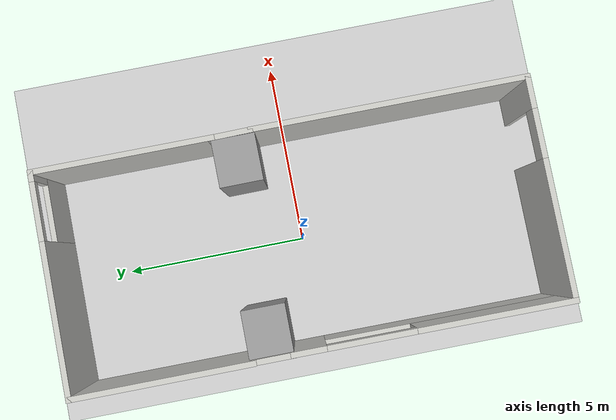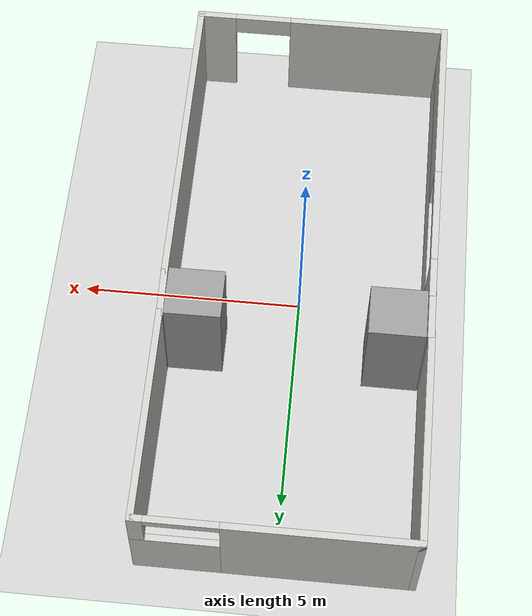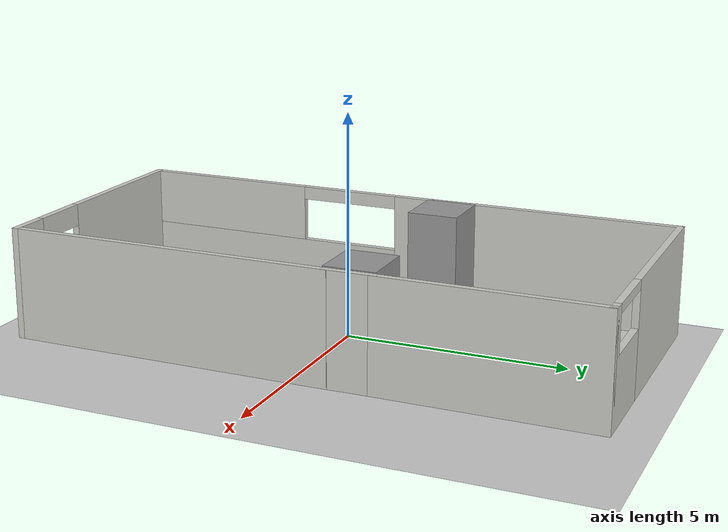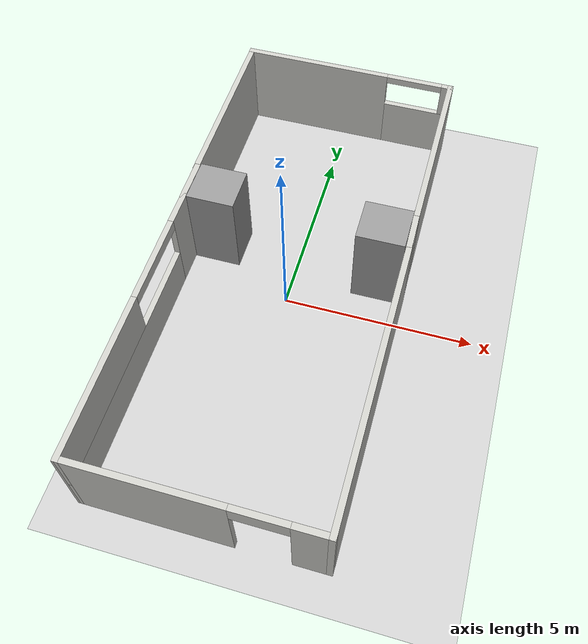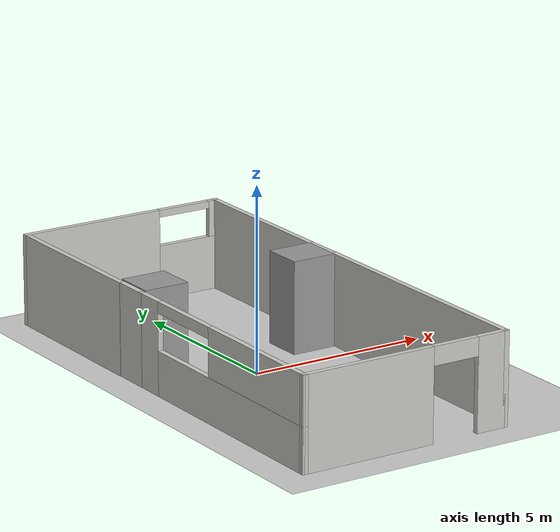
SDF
<sdf version="1.7">
 <world name="default">
  <model name="ground_plane">
   <static>1</static>
   <link name="link">
    <collision name="collision">
     <geometry><plane><normal>0 0 1</normal><size>100 100</size></plane></geometry>
     <surface>
      <contact><collide_bitmask>65535</collide_bitmask></contact>
      <friction><ode><mu>100</mu><mu2>50</mu2></ode></friction>
     </surface>
    </collision>
    <visual name="visual">
     <cast_shadows>0</cast_shadows>
     <geometry><plane><normal>0 0 1</normal><size>100 100</size></plane></geometry>
     <material>
      <script><uri>file://media/materials/scripts/gazebo.material</uri><name>Gazebo/Grey</name></script>
     </material>
    </visual>
   </link>
  </model>
  <model name="labview1">
   <link name="Wall_0">
    <pose>-0.008541 6.52312 0 0 -0 0</pose>
    <visual name="Wall_0_Visual_0">
     <pose>-0.939832 0 1.25 0 -0 0</pose>
     <geometry><box><size>4.12034 0.15 2.5</size></box></geometry>
     <material>
      <script><uri>file://media/materials/scripts/gazebo.material</uri><name>Gazebo/CeilingTiled</name></script>
      <ambient>1 1 1 1</ambient>
      <shader type="pixel"/>
     </material>
     <meta><layer>0</layer></meta>
    </visual>
    <visual name="Wall_0_Visual_1">
     <pose>2.06017 0 0.75 0 -0 0</pose>
     <geometry><box><size>1.87966 0.15 1.5</size></box></geometry>
     <material>
      <script><uri>file://media/materials/scripts/gazebo.material</uri><name>Gazebo/CeilingTiled</name></script>
      <ambient>1 1 1 1</ambient>
      <shader type="pixel"/>
     </material>
     <meta><layer>0</layer></meta>
    </visual>
    <visual name="Wall_0_Visual_3">
     <pose>1.89841 0 2.4 0 -0 0</pose>
     <geometry><box><size>1.55614 0.15 0.2</size></box></geometry>
     <material>
      <script><uri>file://media/materials/scripts/gazebo.material</uri><name>Gazebo/CeilingTiled</name></script>
      <ambient>1 1 1 1</ambient>
      <shader type="pixel"/>
     </material>
     <meta><layer>0</layer></meta>
    </visual>
    <visual name="Wall_0_Visual_2">
     <pose>2.83824 0 2 0 -0 0</pose>
     <geometry><box><size>0.32352 0.15 1</size></box></geometry>
     <material>
      <script><uri>file://media/materials/scripts/gazebo.material</uri><name>Gazebo/CeilingTiled</name></script>
      <ambient>1 1 1 1</ambient>
      <shader type="pixel"/>
     </material>
     <meta><layer>0</layer></meta>
    </visual>
    <collision name="Wall_0_Collision_0">
     <pose>-0.939832 0 1.25 0 -0 0</pose>
     <geometry><box><size>4.12034 0.15 2.5</size></box></geometry>
     <surface>
      <friction>
       <ode><mu>1</mu><mu2>1</mu2><fdir1>0 0 0</fdir1><slip1>0</slip1><slip2>0</slip2></ode>
       <torsional>
        <coefficient>1</coefficient>
        <patch_radius>0</patch_radius>
        <surface_radius>0</surface_radius>
        <use_patch_radius>1</use_patch_radius>
        <ode><slip>0</slip></ode>
       </torsional>
      </friction>
      <bounce><restitution_coefficient>0</restitution_coefficient><threshold>1e+06</threshold></bounce>
      <contact>
       <collide_without_contact>0</collide_without_contact>
       <collide_without_contact_bitmask>1</collide_without_contact_bitmask>
       <collide_bitmask>1</collide_bitmask>
       <ode>
        <soft_cfm>0</soft_cfm>
        <soft_erp>0.2</soft_erp>
        <kp>1e+13</kp>
        <kd>1</kd>
        <max_vel>0.01</max_vel>
        <min_depth>0</min_depth>
       </ode>
       <bullet>
        <split_impulse>1</split_impulse>
        <split_impulse_penetration_threshold>-0.01</split_impulse_penetration_threshold>
        <soft_cfm>0</soft_cfm>
        <soft_erp>0.2</soft_erp>
        <kp>1e+13</kp>
        <kd>1</kd>
       </bullet>
      </contact>
     </surface>
    </collision>
    <collision name="Wall_0_Collision_1">
     <pose>2.06017 0 0.75 0 -0 0</pose>
     <geometry><box><size>1.87966 0.15 1.5</size></box></geometry>
     <surface>
      <friction>
       <ode><mu>1</mu><mu2>1</mu2><fdir1>0 0 0</fdir1><slip1>0</slip1><slip2>0</slip2></ode>
       <torsional>
        <coefficient>1</coefficient>
        <patch_radius>0</patch_radius>
        <surface_radius>0</surface_radius>
        <use_patch_radius>1</use_patch_radius>
        <ode><slip>0</slip></ode>
       </torsional>
      </friction>
      <bounce><restitution_coefficient>0</restitution_coefficient><threshold>1e+06</threshold></bounce>
      <contact>
       <collide_without_contact>0</collide_without_contact>
       <collide_without_contact_bitmask>1</collide_without_contact_bitmask>
       <collide_bitmask>1</collide_bitmask>
       <ode>
        <soft_cfm>0</soft_cfm>
        <soft_erp>0.2</soft_erp>
        <kp>1e+13</kp>
        <kd>1</kd>
        <max_vel>0.01</max_vel>
        <min_depth>0</min_depth>
       </ode>
       <bullet>
        <split_impulse>1</split_impulse>
        <split_impulse_penetration_threshold>-0.01</split_impulse_penetration_threshold>
        <soft_cfm>0</soft_cfm>
        <soft_erp>0.2</soft_erp>
        <kp>1e+13</kp>
        <kd>1</kd>
       </bullet>
      </contact>
     </surface>
    </collision>
    <collision name="Wall_0_Collision_2">
     <pose>2.83824 0 2 0 -0 0</pose>
     <geometry><box><size>0.32352 0.15 1</size></box></geometry>
     <surface>
      <friction>
       <ode><mu>1</mu><mu2>1</mu2><fdir1>0 0 0</fdir1><slip1>0</slip1><slip2>0</slip2></ode>
       <torsional>
        <coefficient>1</coefficient>
        <patch_radius>0</patch_radius>
        <surface_radius>0</surface_radius>
        <use_patch_radius>1</use_patch_radius>
        <ode><slip>0</slip></ode>
       </torsional>
      </friction>
      <bounce><restitution_coefficient>0</restitution_coefficient><threshold>1e+06</threshold></bounce>
      <contact>
       <collide_without_contact>0</collide_without_contact>
       <collide_without_contact_bitmask>1</collide_without_contact_bitmask>
       <collide_bitmask>1</collide_bitmask>
       <ode>
        <soft_cfm>0</soft_cfm>
        <soft_erp>0.2</soft_erp>
        <kp>1e+13</kp>
        <kd>1</kd>
        <max_vel>0.01</max_vel>
        <min_depth>0</min_depth>
       </ode>
       <bullet>
        <split_impulse>1</split_impulse>
        <split_impulse_penetration_threshold>-0.01</split_impulse_penetration_threshold>
        <soft_cfm>0</soft_cfm>
        <soft_erp>0.2</soft_erp>
        <kp>1e+13</kp>
        <kd>1</kd>
       </bullet>
      </contact>
     </surface>
    </collision>
    <collision name="Wall_0_Collision_3">
     <pose>1.89841 0 2.4 0 -0 0</pose>
     <geometry><box><size>1.55614 0.15 0.2</size></box></geometry>
     <surface>
      <friction>
       <ode><mu>1</mu><mu2>1</mu2><fdir1>0 0 0</fdir1><slip1>0</slip1><slip2>0</slip2></ode>
       <torsional>
        <coefficient>1</coefficient>
        <patch_radius>0</patch_radius>
        <surface_radius>0</surface_radius>
        <use_patch_radius>1</use_patch_radius>
        <ode><slip>0</slip></ode>
       </torsional>
      </friction>
      <bounce><restitution_coefficient>0</restitution_coefficient><threshold>1e+06</threshold></bounce>
      <contact>
       <collide_without_contact>0</collide_without_contact>
       <collide_without_contact_bitmask>1</collide_without_contact_bitmask>
       <collide_bitmask>1</collide_bitmask>
       <ode>
        <soft_cfm>0</soft_cfm>
        <soft_erp>0.2</soft_erp>
        <kp>1e+13</kp>
        <kd>1</kd>
        <max_vel>0.01</max_vel>
        <min_depth>0</min_depth>
       </ode>
       <bullet>
        <split_impulse>1</split_impulse>
        <split_impulse_penetration_threshold>-0.01</split_impulse_penetration_threshold>
        <soft_cfm>0</soft_cfm>
        <soft_erp>0.2</soft_erp>
        <kp>1e+13</kp>
        <kd>1</kd>
       </bullet>
      </contact>
     </surface>
    </collision>
   </link>
   <link name="Wall_11">
    <pose>2.91646 4.16012 0 0 0 -1.5708</pose>
    <visual name="Wall_11_Visual">
     <pose>0 0 1.25 0 -0 0</pose>
     <geometry><box><size>4.876 0.15 2.5</size></box></geometry>
     <material>
      <script><uri>file://media/materials/scripts/gazebo.material</uri><name>Gazebo/CeilingTiled</name></script>
      <ambient>1 1 1 1</ambient>
      <shader type="pixel"/>
     </material>
     <meta><layer>0</layer></meta>
    </visual>
    <collision name="Wall_11_Collision">
     <pose>0 0 1.25 0 -0 0</pose>
     <geometry><box><size>4.876 0.15 2.5</size></box></geometry>
     <surface>
      <friction>
       <ode><mu>1</mu><mu2>1</mu2><fdir1>0 0 0</fdir1><slip1>0</slip1><slip2>0</slip2></ode>
       <torsional>
        <coefficient>1</coefficient>
        <patch_radius>0</patch_radius>
        <surface_radius>0</surface_radius>
        <use_patch_radius>1</use_patch_radius>
        <ode><slip>0</slip></ode>
       </torsional>
      </friction>
      <bounce><restitution_coefficient>0</restitution_coefficient><threshold>1e+06</threshold></bounce>
      <contact>
       <collide_without_contact>0</collide_without_contact>
       <collide_without_contact_bitmask>1</collide_without_contact_bitmask>
       <collide_bitmask>1</collide_bitmask>
       <ode>
        <soft_cfm>0</soft_cfm>
        <soft_erp>0.2</soft_erp>
        <kp>1e+13</kp>
        <kd>1</kd>
        <max_vel>0.01</max_vel>
        <min_depth>0</min_depth>
       </ode>
       <bullet>
        <split_impulse>1</split_impulse>
        <split_impulse_penetration_threshold>-0.01</split_impulse_penetration_threshold>
        <soft_cfm>0</soft_cfm>
        <soft_erp>0.2</soft_erp>
        <kp>1e+13</kp>
        <kd>1</kd>
       </bullet>
      </contact>
     </surface>
    </collision>
   </link>
   <link name="Wall_15">
    <pose>2.92039 1.30529 0 0 0 -1.554</pose>
    <visual name="Wall_15_Visual">
     <pose>0 0 1.25 0 -0 0</pose>
     <geometry><box><size>1.179 0.15 2.5</size></box></geometry>
     <material>
      <script><uri>file://media/materials/scripts/gazebo.material</uri><name>Gazebo/CeilingTiled</name></script>
      <ambient>1 1 1 1</ambient>
      <shader type="pixel"/>
     </material>
     <meta><layer>0</layer></meta>
    </visual>
    <collision name="Wall_15_Collision">
     <pose>0 0 1.25 0 -0 0</pose>
     <geometry><box><size>1.179 0.15 2.5</size></box></geometry>
     <surface>
      <friction>
       <ode><mu>1</mu><mu2>1</mu2><fdir1>0 0 0</fdir1><slip1>0</slip1><slip2>0</slip2></ode>
       <torsional>
        <coefficient>1</coefficient>
        <patch_radius>0</patch_radius>
        <surface_radius>0</surface_radius>
        <use_patch_radius>1</use_patch_radius>
        <ode><slip>0</slip></ode>
       </torsional>
      </friction>
      <bounce><restitution_coefficient>0</restitution_coefficient><threshold>1e+06</threshold></bounce>
      <contact>
       <collide_without_contact>0</collide_without_contact>
       <collide_without_contact_bitmask>1</collide_without_contact_bitmask>
       <collide_bitmask>1</collide_bitmask>
       <ode>
        <soft_cfm>0</soft_cfm>
        <soft_erp>0.2</soft_erp>
        <kp>1e+13</kp>
        <kd>1</kd>
        <max_vel>0.01</max_vel>
        <min_depth>0</min_depth>
       </ode>
       <bullet>
        <split_impulse>1</split_impulse>
        <split_impulse_penetration_threshold>-0.01</split_impulse_penetration_threshold>
        <soft_cfm>0</soft_cfm>
        <soft_erp>0.2</soft_erp>
        <kp>1e+13</kp>
        <kd>1</kd>
       </bullet>
      </contact>
     </surface>
    </collision>
   </link>
   <link name="Wall_17">
    <pose>2.93374 -2.87723 0 0 0 -1.5708</pose>
    <visual name="Wall_17_Visual">
     <pose>0 0 1.25 0 -0 0</pose>
     <geometry><box><size>7.441 0.15 2.5</size></box></geometry>
     <material>
      <script><uri>file://media/materials/scripts/gazebo.material</uri><name>Gazebo/CeilingTiled</name></script>
      <ambient>1 1 1 1</ambient>
      <shader type="pixel"/>
     </material>
     <meta><layer>0</layer></meta>
    </visual>
    <collision name="Wall_17_Collision">
     <pose>0 0 1.25 0 -0 0</pose>
     <geometry><box><size>7.441 0.15 2.5</size></box></geometry>
     <surface>
      <friction>
       <ode><mu>1</mu><mu2>1</mu2><fdir1>0 0 0</fdir1><slip1>0</slip1><slip2>0</slip2></ode>
       <torsional>
        <coefficient>1</coefficient>
        <patch_radius>0</patch_radius>
        <surface_radius>0</surface_radius>
        <use_patch_radius>1</use_patch_radius>
        <ode><slip>0</slip></ode>
       </torsional>
      </friction>
      <bounce><restitution_coefficient>0</restitution_coefficient><threshold>1e+06</threshold></bounce>
      <contact>
       <collide_without_contact>0</collide_without_contact>
       <collide_without_contact_bitmask>1</collide_without_contact_bitmask>
       <collide_bitmask>1</collide_bitmask>
       <ode>
        <soft_cfm>0</soft_cfm>
        <soft_erp>0.2</soft_erp>
        <kp>1e+13</kp>
        <kd>1</kd>
        <max_vel>0.01</max_vel>
        <min_depth>0</min_depth>
       </ode>
       <bullet>
        <split_impulse>1</split_impulse>
        <split_impulse_penetration_threshold>-0.01</split_impulse_penetration_threshold>
        <soft_cfm>0</soft_cfm>
        <soft_erp>0.2</soft_erp>
        <kp>1e+13</kp>
        <kd>1</kd>
       </bullet>
      </contact>
     </surface>
    </collision>
   </link>
   <link name="Wall_19">
    <pose>0.000101 -6.5228 0 0 -0 2.5e-05</pose>
    <visual name="Wall_19_Visual_0">
     <pose>-1.12074 0 1.25 0 -0 0</pose>
     <geometry><box><size>3.77581 0.15 2.5</size></box></geometry>
     <material>
      <script><uri>file://media/materials/scripts/gazebo.material</uri><name>Gazebo/CeilingTiled</name></script>
      <ambient>1 1 1 1</ambient>
      <shader type="pixel"/>
     </material>
     <meta><layer>0</layer></meta>
    </visual>
    <visual name="Wall_19_Visual_1">
     <pose>2.5466 0 1.25 0 -0 0</pose>
     <geometry><box><size>0.924084 0.15 2.5</size></box></geometry>
     <material>
      <script><uri>file://media/materials/scripts/gazebo.material</uri><name>Gazebo/CeilingTiled</name></script>
      <ambient>1 1 1 1</ambient>
      <shader type="pixel"/>
     </material>
     <meta><layer>0</layer></meta>
    </visual>
    <visual name="Wall_19_Visual_2">
     <pose>1.42586 0 2.25 0 -0 0</pose>
     <geometry><box><size>1.31739 0.15 0.5</size></box></geometry>
     <material>
      <script><uri>file://media/materials/scripts/gazebo.material</uri><name>Gazebo/CeilingTiled</name></script>
      <ambient>1 1 1 1</ambient>
      <shader type="pixel"/>
     </material>
     <meta><layer>0</layer></meta>
    </visual>
    <collision name="Wall_19_Collision_0">
     <pose>-1.12074 0 1.25 0 -0 0</pose>
     <geometry><box><size>3.77581 0.15 2.5</size></box></geometry>
     <surface>
      <friction>
       <ode><mu>1</mu><mu2>1</mu2><fdir1>0 0 0</fdir1><slip1>0</slip1><slip2>0</slip2></ode>
       <torsional>
        <coefficient>1</coefficient>
        <patch_radius>0</patch_radius>
        <surface_radius>0</surface_radius>
        <use_patch_radius>1</use_patch_radius>
        <ode><slip>0</slip></ode>
       </torsional>
      </friction>
      <bounce><restitution_coefficient>0</restitution_coefficient><threshold>1e+06</threshold></bounce>
      <contact>
       <collide_without_contact>0</collide_without_contact>
       <collide_without_contact_bitmask>1</collide_without_contact_bitmask>
       <collide_bitmask>1</collide_bitmask>
       <ode>
        <soft_cfm>0</soft_cfm>
        <soft_erp>0.2</soft_erp>
        <kp>1e+13</kp>
        <kd>1</kd>
        <max_vel>0.01</max_vel>
        <min_depth>0</min_depth>
       </ode>
       <bullet>
        <split_impulse>1</split_impulse>
        <split_impulse_penetration_threshold>-0.01</split_impulse_penetration_threshold>
        <soft_cfm>0</soft_cfm>
        <soft_erp>0.2</soft_erp>
        <kp>1e+13</kp>
        <kd>1</kd>
       </bullet>
      </contact>
     </surface>
    </collision>
    <collision name="Wall_19_Collision_1">
     <pose>2.5466 0 1.25 0 -0 0</pose>
     <geometry><box><size>0.924084 0.15 2.5</size></box></geometry>
     <surface>
      <friction>
       <ode><mu>1</mu><mu2>1</mu2><fdir1>0 0 0</fdir1><slip1>0</slip1><slip2>0</slip2></ode>
       <torsional>
        <coefficient>1</coefficient>
        <patch_radius>0</patch_radius>
        <surface_radius>0</surface_radius>
        <use_patch_radius>1</use_patch_radius>
        <ode><slip>0</slip></ode>
       </torsional>
      </friction>
      <bounce><restitution_coefficient>0</restitution_coefficient><threshold>1e+06</threshold></bounce>
      <contact>
       <collide_without_contact>0</collide_without_contact>
       <collide_without_contact_bitmask>1</collide_without_contact_bitmask>
       <collide_bitmask>1</collide_bitmask>
       <ode>
        <soft_cfm>0</soft_cfm>
        <soft_erp>0.2</soft_erp>
        <kp>1e+13</kp>
        <kd>1</kd>
        <max_vel>0.01</max_vel>
        <min_depth>0</min_depth>
       </ode>
       <bullet>
        <split_impulse>1</split_impulse>
        <split_impulse_penetration_threshold>-0.01</split_impulse_penetration_threshold>
        <soft_cfm>0</soft_cfm>
        <soft_erp>0.2</soft_erp>
        <kp>1e+13</kp>
        <kd>1</kd>
       </bullet>
      </contact>
     </surface>
    </collision>
    <collision name="Wall_19_Collision_2">
     <pose>1.42586 0 2.25 0 -0 0</pose>
     <geometry><box><size>1.31739 0.15 0.5</size></box></geometry>
     <surface>
      <friction>
       <ode><mu>1</mu><mu2>1</mu2><fdir1>0 0 0</fdir1><slip1>0</slip1><slip2>0</slip2></ode>
       <torsional>
        <coefficient>1</coefficient>
        <patch_radius>0</patch_radius>
        <surface_radius>0</surface_radius>
        <use_patch_radius>1</use_patch_radius>
        <ode><slip>0</slip></ode>
       </torsional>
      </friction>
      <bounce><restitution_coefficient>0</restitution_coefficient><threshold>1e+06</threshold></bounce>
      <contact>
       <collide_without_contact>0</collide_without_contact>
       <collide_without_contact_bitmask>1</collide_without_contact_bitmask>
       <collide_bitmask>1</collide_bitmask>
       <ode>
        <soft_cfm>0</soft_cfm>
        <soft_erp>0.2</soft_erp>
        <kp>1e+13</kp>
        <kd>1</kd>
        <max_vel>0.01</max_vel>
        <min_depth>0</min_depth>
       </ode>
       <bullet>
        <split_impulse>1</split_impulse>
        <split_impulse_penetration_threshold>-0.01</split_impulse_penetration_threshold>
        <soft_cfm>0</soft_cfm>
        <soft_erp>0.2</soft_erp>
        <kp>1e+13</kp>
        <kd>1</kd>
       </bullet>
      </contact>
     </surface>
    </collision>
   </link>
   <link name="Wall_2">
    <pose>-2.93354 4.16012 0 0 0 -1.5708</pose>
    <visual name="Wall_2_Visual">
     <pose>0 0 1.25 0 -0 0</pose>
     <geometry><box><size>4.876 0.15 2.5</size></box></geometry>
     <material>
      <script><uri>file://media/materials/scripts/gazebo.material</uri><name>Gazebo/CeilingTiled</name></script>
      <ambient>1 1 1 1</ambient>
      <shader type="pixel"/>
     </material>
     <meta><layer>0</layer></meta>
    </visual>
    <collision name="Wall_2_Collision">
     <pose>0 0 1.25 0 -0 0</pose>
     <geometry><box><size>4.876 0.15 2.5</size></box></geometry>
     <surface>
      <friction>
       <ode><mu>1</mu><mu2>1</mu2><fdir1>0 0 0</fdir1><slip1>0</slip1><slip2>0</slip2></ode>
       <torsional>
        <coefficient>1</coefficient>
        <patch_radius>0</patch_radius>
        <surface_radius>0</surface_radius>
        <use_patch_radius>1</use_patch_radius>
        <ode><slip>0</slip></ode>
       </torsional>
      </friction>
      <bounce><restitution_coefficient>0</restitution_coefficient><threshold>1e+06</threshold></bounce>
      <contact>
       <collide_without_contact>0</collide_without_contact>
       <collide_without_contact_bitmask>1</collide_without_contact_bitmask>
       <collide_bitmask>1</collide_bitmask>
       <ode>
        <soft_cfm>0</soft_cfm>
        <soft_erp>0.2</soft_erp>
        <kp>1e+13</kp>
        <kd>1</kd>
        <max_vel>0.01</max_vel>
        <min_depth>0</min_depth>
       </ode>
       <bullet>
        <split_impulse>1</split_impulse>
        <split_impulse_penetration_threshold>-0.01</split_impulse_penetration_threshold>
        <soft_cfm>0</soft_cfm>
        <soft_erp>0.2</soft_erp>
        <kp>1e+13</kp>
        <kd>1</kd>
       </bullet>
      </contact>
     </surface>
    </collision>
   </link>
   <link name="Wall_5">
    <pose>-2.91836 1.28263 0 0 0 -1.5708</pose>
    <visual name="Wall_5_Visual">
     <pose>0 0 1.25 0 -0 0</pose>
     <geometry><box><size>1.17898 0.15 2.5</size></box></geometry>
     <material>
      <script><uri>file://media/materials/scripts/gazebo.material</uri><name>Gazebo/CeilingTiled</name></script>
      <ambient>1 1 1 1</ambient>
      <shader type="pixel"/>
     </material>
     <meta><layer>0</layer></meta>
    </visual>
    <collision name="Wall_5_Collision">
     <pose>0 0 1.25 0 -0 0</pose>
     <geometry><box><size>1.17898 0.15 2.5</size></box></geometry>
     <surface>
      <friction>
       <ode><mu>1</mu><mu2>1</mu2><fdir1>0 0 0</fdir1><slip1>0</slip1><slip2>0</slip2></ode>
       <torsional>
        <coefficient>1</coefficient>
        <patch_radius>0</patch_radius>
        <surface_radius>0</surface_radius>
        <use_patch_radius>1</use_patch_radius>
        <ode><slip>0</slip></ode>
       </torsional>
      </friction>
      <bounce><restitution_coefficient>0</restitution_coefficient><threshold>1e+06</threshold></bounce>
      <contact>
       <collide_without_contact>0</collide_without_contact>
       <collide_without_contact_bitmask>1</collide_without_contact_bitmask>
       <collide_bitmask>1</collide_bitmask>
       <ode>
        <soft_cfm>0</soft_cfm>
        <soft_erp>0.2</soft_erp>
        <kp>1e+13</kp>
        <kd>1</kd>
        <max_vel>0.01</max_vel>
        <min_depth>0</min_depth>
       </ode>
       <bullet>
        <split_impulse>1</split_impulse>
        <split_impulse_penetration_threshold>-0.01</split_impulse_penetration_threshold>
        <soft_cfm>0</soft_cfm>
        <soft_erp>0.2</soft_erp>
        <kp>1e+13</kp>
        <kd>1</kd>
       </bullet>
      </contact>
     </surface>
    </collision>
   </link>
   <link name="Wall_9">
    <pose>-2.9236 -2.87737 0 0 0 -1.57352</pose>
    <visual name="Wall_9_Visual_0">
     <pose>-3.25053 0 1.25 0 -0 0</pose>
     <geometry><box><size>0.940067 0.15 2.5</size></box></geometry>
     <material>
      <script><uri>file://media/materials/scripts/gazebo.material</uri><name>Gazebo/CeilingTiled</name></script>
      <ambient>1 1 1 1</ambient>
      <shader type="pixel"/>
     </material>
     <meta><layer>0</layer></meta>
    </visual>
    <visual name="Wall_9_Visual_1">
     <pose>0.470034 0 0.6 0 -0 0</pose>
     <geometry><box><size>6.50106 0.15 1.2</size></box></geometry>
     <material>
      <script><uri>file://media/materials/scripts/gazebo.material</uri><name>Gazebo/CeilingTiled</name></script>
      <ambient>1 1 1 1</ambient>
      <shader type="pixel"/>
     </material>
     <meta><layer>0</layer></meta>
    </visual>
    <visual name="Wall_9_Visual_2">
     <pose>1.63503 0 1.85 0 -0 0</pose>
     <geometry><box><size>4.17106 0.15 1.3</size></box></geometry>
     <material>
      <script><uri>file://media/materials/scripts/gazebo.material</uri><name>Gazebo/CeilingTiled</name></script>
      <ambient>1 1 1 1</ambient>
      <shader type="pixel"/>
     </material>
     <meta><layer>0</layer></meta>
    </visual>
    <visual name="Wall_9_Visual_3">
     <pose>-1.61549 0 2.35 0 -0 0</pose>
     <geometry><box><size>2.33 0.15 0.3</size></box></geometry>
     <material>
      <script><uri>file://media/materials/scripts/gazebo.material</uri><name>Gazebo/CeilingTiled</name></script>
      <ambient>1 1 1 1</ambient>
      <shader type="pixel"/>
     </material>
     <meta><layer>0</layer></meta>
    </visual>
    <collision name="Wall_9_Collision_0">
     <pose>-3.25053 0 1.25 0 -0 0</pose>
     <geometry><box><size>0.940067 0.15 2.5</size></box></geometry>
     <surface>
      <friction>
       <ode><mu>1</mu><mu2>1</mu2><fdir1>0 0 0</fdir1><slip1>0</slip1><slip2>0</slip2></ode>
       <torsional>
        <coefficient>1</coefficient>
        <patch_radius>0</patch_radius>
        <surface_radius>0</surface_radius>
        <use_patch_radius>1</use_patch_radius>
        <ode><slip>0</slip></ode>
       </torsional>
      </friction>
      <bounce><restitution_coefficient>0</restitution_coefficient><threshold>1e+06</threshold></bounce>
      <contact>
       <collide_without_contact>0</collide_without_contact>
       <collide_without_contact_bitmask>1</collide_without_contact_bitmask>
       <collide_bitmask>1</collide_bitmask>
       <ode>
        <soft_cfm>0</soft_cfm>
        <soft_erp>0.2</soft_erp>
        <kp>1e+13</kp>
        <kd>1</kd>
        <max_vel>0.01</max_vel>
        <min_depth>0</min_depth>
       </ode>
       <bullet>
        <split_impulse>1</split_impulse>
        <split_impulse_penetration_threshold>-0.01</split_impulse_penetration_threshold>
        <soft_cfm>0</soft_cfm>
        <soft_erp>0.2</soft_erp>
        <kp>1e+13</kp>
        <kd>1</kd>
       </bullet>
      </contact>
     </surface>
    </collision>
    <collision name="Wall_9_Collision_1">
     <pose>0.470034 0 0.6 0 -0 0</pose>
     <geometry><box><size>6.50106 0.15 1.2</size></box></geometry>
     <surface>
      <friction>
       <ode><mu>1</mu><mu2>1</mu2><fdir1>0 0 0</fdir1><slip1>0</slip1><slip2>0</slip2></ode>
       <torsional>
        <coefficient>1</coefficient>
        <patch_radius>0</patch_radius>
        <surface_radius>0</surface_radius>
        <use_patch_radius>1</use_patch_radius>
        <ode><slip>0</slip></ode>
       </torsional>
      </friction>
      <bounce><restitution_coefficient>0</restitution_coefficient><threshold>1e+06</threshold></bounce>
      <contact>
       <collide_without_contact>0</collide_without_contact>
       <collide_without_contact_bitmask>1</collide_without_contact_bitmask>
       <collide_bitmask>1</collide_bitmask>
       <ode>
        <soft_cfm>0</soft_cfm>
        <soft_erp>0.2</soft_erp>
        <kp>1e+13</kp>
        <kd>1</kd>
        <max_vel>0.01</max_vel>
        <min_depth>0</min_depth>
       </ode>
       <bullet>
        <split_impulse>1</split_impulse>
        <split_impulse_penetration_threshold>-0.01</split_impulse_penetration_threshold>
        <soft_cfm>0</soft_cfm>
        <soft_erp>0.2</soft_erp>
        <kp>1e+13</kp>
        <kd>1</kd>
       </bullet>
      </contact>
     </surface>
    </collision>
    <collision name="Wall_9_Collision_2">
     <pose>1.63503 0 1.85 0 -0 0</pose>
     <geometry><box><size>4.17106 0.15 1.3</size></box></geometry>
     <surface>
      <friction>
       <ode><mu>1</mu><mu2>1</mu2><fdir1>0 0 0</fdir1><slip1>0</slip1><slip2>0</slip2></ode>
       <torsional>
        <coefficient>1</coefficient>
        <patch_radius>0</patch_radius>
        <surface_radius>0</surface_radius>
        <use_patch_radius>1</use_patch_radius>
        <ode><slip>0</slip></ode>
       </torsional>
      </friction>
      <bounce><restitution_coefficient>0</restitution_coefficient><threshold>1e+06</threshold></bounce>
      <contact>
       <collide_without_contact>0</collide_without_contact>
       <collide_without_contact_bitmask>1</collide_without_contact_bitmask>
       <collide_bitmask>1</collide_bitmask>
       <ode>
        <soft_cfm>0</soft_cfm>
        <soft_erp>0.2</soft_erp>
        <kp>1e+13</kp>
        <kd>1</kd>
        <max_vel>0.01</max_vel>
        <min_depth>0</min_depth>
       </ode>
       <bullet>
        <split_impulse>1</split_impulse>
        <split_impulse_penetration_threshold>-0.01</split_impulse_penetration_threshold>
        <soft_cfm>0</soft_cfm>
        <soft_erp>0.2</soft_erp>
        <kp>1e+13</kp>
        <kd>1</kd>
       </bullet>
      </contact>
     </surface>
    </collision>
    <collision name="Wall_9_Collision_3">
     <pose>-1.61549 0 2.35 0 -0 0</pose>
     <geometry><box><size>2.33 0.15 0.3</size></box></geometry>
     <surface>
      <friction>
       <ode><mu>1</mu><mu2>1</mu2><fdir1>0 0 0</fdir1><slip1>0</slip1><slip2>0</slip2></ode>
       <torsional>
        <coefficient>1</coefficient>
        <patch_radius>0</patch_radius>
        <surface_radius>0</surface_radius>
        <use_patch_radius>1</use_patch_radius>
        <ode><slip>0</slip></ode>
       </torsional>
      </friction>
      <bounce><restitution_coefficient>0</restitution_coefficient><threshold>1e+06</threshold></bounce>
      <contact>
       <collide_without_contact>0</collide_without_contact>
       <collide_without_contact_bitmask>1</collide_without_contact_bitmask>
       <collide_bitmask>1</collide_bitmask>
       <ode>
        <soft_cfm>0</soft_cfm>
        <soft_erp>0.2</soft_erp>
        <kp>1e+13</kp>
        <kd>1</kd>
        <max_vel>0.01</max_vel>
        <min_depth>0</min_depth>
       </ode>
       <bullet>
        <split_impulse>1</split_impulse>
        <split_impulse_penetration_threshold>-0.01</split_impulse_penetration_threshold>
        <soft_cfm>0</soft_cfm>
        <soft_erp>0.2</soft_erp>
        <kp>1e+13</kp>
        <kd>1</kd>
       </bullet>
      </contact>
     </surface>
    </collision>
   </link>
   <static>1</static>
   <pose>0.021113 0.03546 0 0 -0 0</pose>
  </model>
  <model name="unit_box">
   <link name="link">
    <inertial>
     <mass>3.60494</mass>
     <inertia><ixx>2.3033</ixx><ixy>0</ixy><ixz>0</ixz><iyy>2.37592</iyy><iyz>0</iyz><izz>0.862411</izz></inertia>
    </inertial>
    <pose>0.115933 0.041317 0.781855 0 -0 0</pose>
    <visual name="visual">
     <geometry><box><size>1.2475 1.14652 2.52044</size></box></geometry>
     <material>
      <script><name>Gazebo/Grey</name><uri>file://media/materials/scripts/gazebo.material</uri></script>
      <shader type="pixel"/>
     </material>
    </visual>
    <collision name="collision">
     <geometry><box><size>1.2475 1.14652 2.52044</size></box></geometry>
     <surface>
      <friction>
       <ode><mu>1</mu><mu2>1</mu2><fdir1>0 0 0</fdir1><slip1>0</slip1><slip2>0</slip2></ode>
       <torsional>
        <coefficient>1</coefficient>
        <patch_radius>0</patch_radius>
        <surface_radius>0</surface_radius>
        <use_patch_radius>1</use_patch_radius>
        <ode><slip>0</slip></ode>
       </torsional>
      </friction>
      <bounce><restitution_coefficient>0</restitution_coefficient><threshold>1e+06</threshold></bounce>
      <contact>
       <collide_without_contact>0</collide_without_contact>
       <collide_without_contact_bitmask>1</collide_without_contact_bitmask>
       <collide_bitmask>1</collide_bitmask>
       <ode>
        <soft_cfm>0</soft_cfm>
        <soft_erp>0.2</soft_erp>
        <kp>1e+13</kp>
        <kd>1</kd>
        <max_vel>0.01</max_vel>
        <min_depth>0</min_depth>
       </ode>
       <bullet>
        <split_impulse>1</split_impulse>
        <split_impulse_penetration_threshold>-0.01</split_impulse_penetration_threshold>
        <soft_cfm>0</soft_cfm>
        <soft_erp>0.2</soft_erp>
        <kp>1e+13</kp>
        <kd>1</kd>
       </bullet>
      </contact>
     </surface>
    </collision>
   </link>
   <static>0</static>
   <pose>-2.29713 1.30804 0.478362 2e-06 -2e-06 -0.000169</pose>
  </model>
  <model name="unit_box_clone">
   <link name="link">
    <inertial>
     <mass>3.60494</mass>
     <inertia><ixx>2.3033</ixx><ixy>0</ixy><ixz>0</ixz><iyy>2.37592</iyy><iyz>0</iyz><izz>0.862411</izz></inertia>
    </inertial>
    <pose>0.115933 0.041317 0.781855 0 -0 0</pose>
    <visual name="visual">
     <geometry><box><size>1.2475 1.14652 2.52044</size></box></geometry>
     <material>
      <script><name>Gazebo/Grey</name><uri>file://media/materials/scripts/gazebo.material</uri></script>
      <shader type="pixel"/>
     </material>
    </visual>
    <collision name="collision">
     <geometry><box><size>1.2475 1.14652 2.52044</size></box></geometry>
     <surface>
      <friction>
       <ode><mu>1</mu><mu2>1</mu2><fdir1>0 0 0</fdir1><slip1>0</slip1><slip2>0</slip2></ode>
       <torsional>
        <coefficient>1</coefficient>
        <patch_radius>0</patch_radius>
        <surface_radius>0</surface_radius>
        <use_patch_radius>1</use_patch_radius>
        <ode><slip>0</slip></ode>
       </torsional>
      </friction>
      <bounce><restitution_coefficient>0</restitution_coefficient><threshold>1e+06</threshold></bounce>
      <contact>
       <collide_without_contact>0</collide_without_contact>
       <collide_without_contact_bitmask>1</collide_without_contact_bitmask>
       <collide_bitmask>1</collide_bitmask>
       <ode>
        <soft_cfm>0</soft_cfm>
        <soft_erp>0.2</soft_erp>
        <kp>1e+13</kp>
        <kd>1</kd>
        <max_vel>0.01</max_vel>
        <min_depth>0</min_depth>
       </ode>
       <bullet>
        <split_impulse>1</split_impulse>
        <split_impulse_penetration_threshold>-0.01</split_impulse_penetration_threshold>
        <soft_cfm>0</soft_cfm>
        <soft_erp>0.2</soft_erp>
        <kp>1e+13</kp>
        <kd>1</kd>
       </bullet>
      </contact>
     </surface>
    </collision>
   </link>
   <static>0</static>
   <pose>2.12011 1.2471 0.478365 0 -0 0.005847</pose>
  </model>
 </world>
</sdf>
